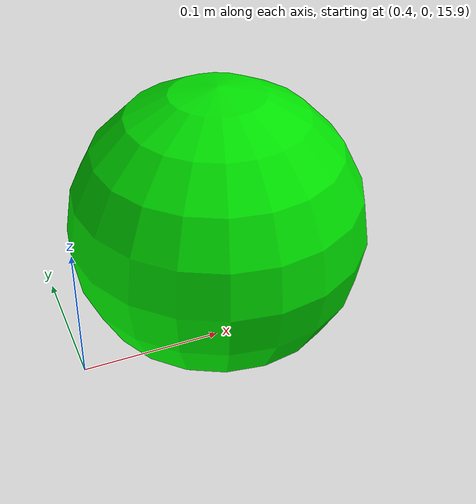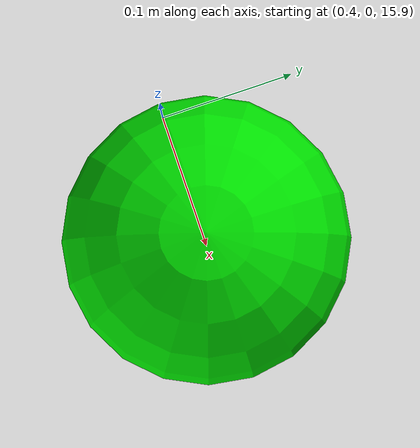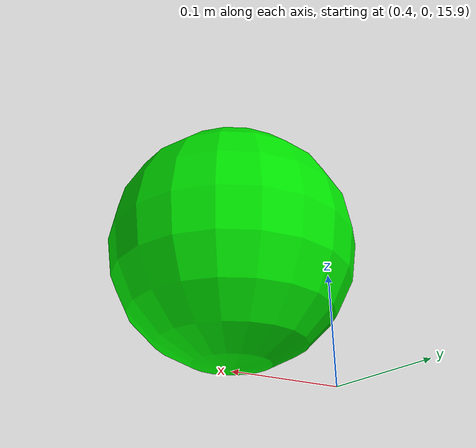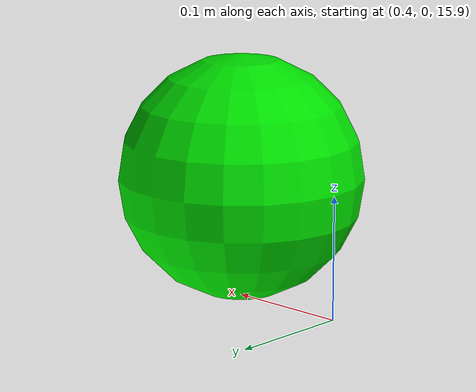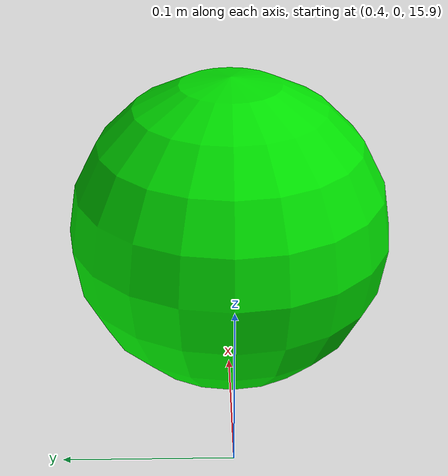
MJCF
<mujoco model="ball">
    <option timestep="0.001" integrator="RK4" gravity="0 0 -9.81">
        <flag energy="enable" contact="disable" />
    </option>
    <compiler angle="radian" />

    <asset>
        <texture type="skybox" builtin="gradient" rgb1="1 1 1" rgb2=".6 .8 1" width="256" height="256"/>
    </asset>

    <worldbody>
        <body name="ball" pos="0.5 0 16">
            <freejoint />
            <geom type="sphere" size=".1 .1 .1" rgba="0 .9 0 1" mass="10" />
        </body>
    </worldbody>

    <visual>
		<global fovy="45" azimuth="225" elevation="-30" />
	</visual>
</mujoco>
